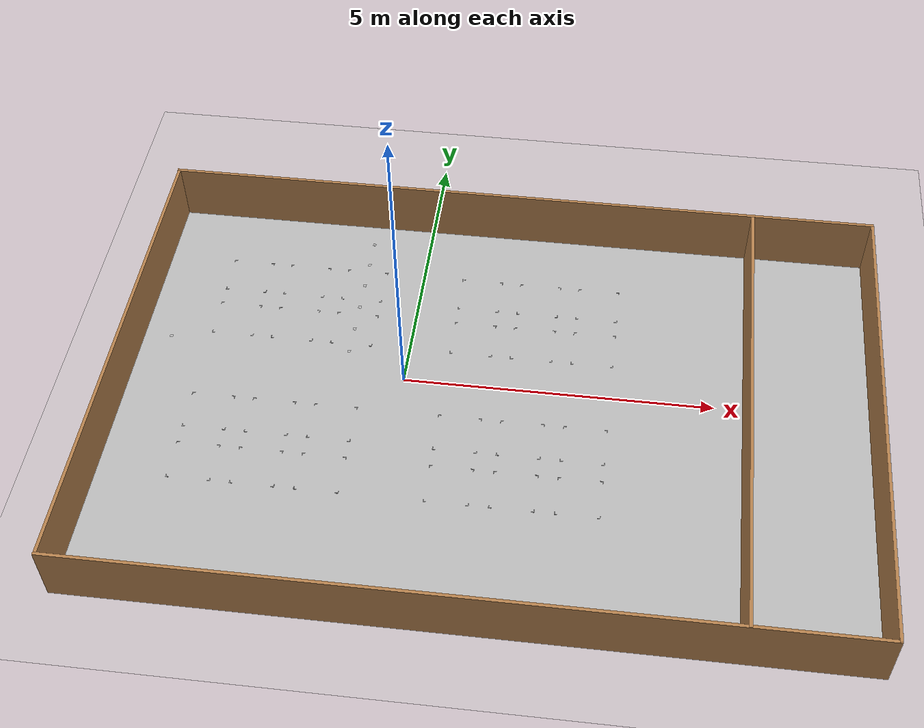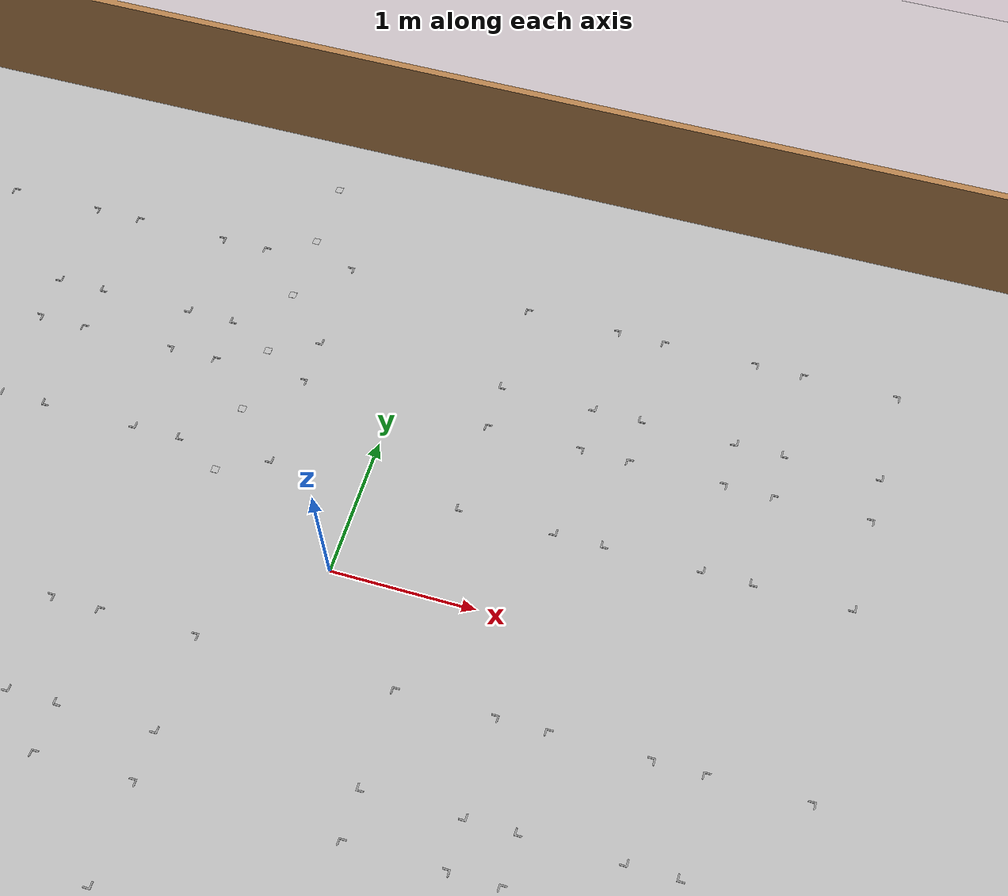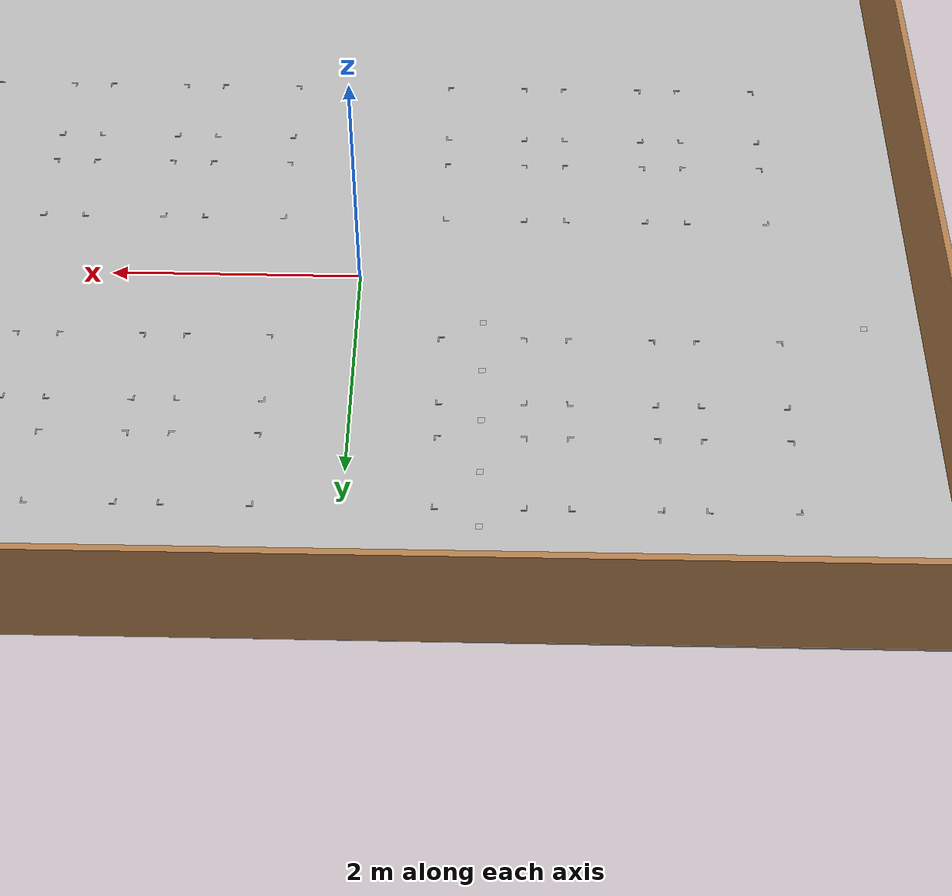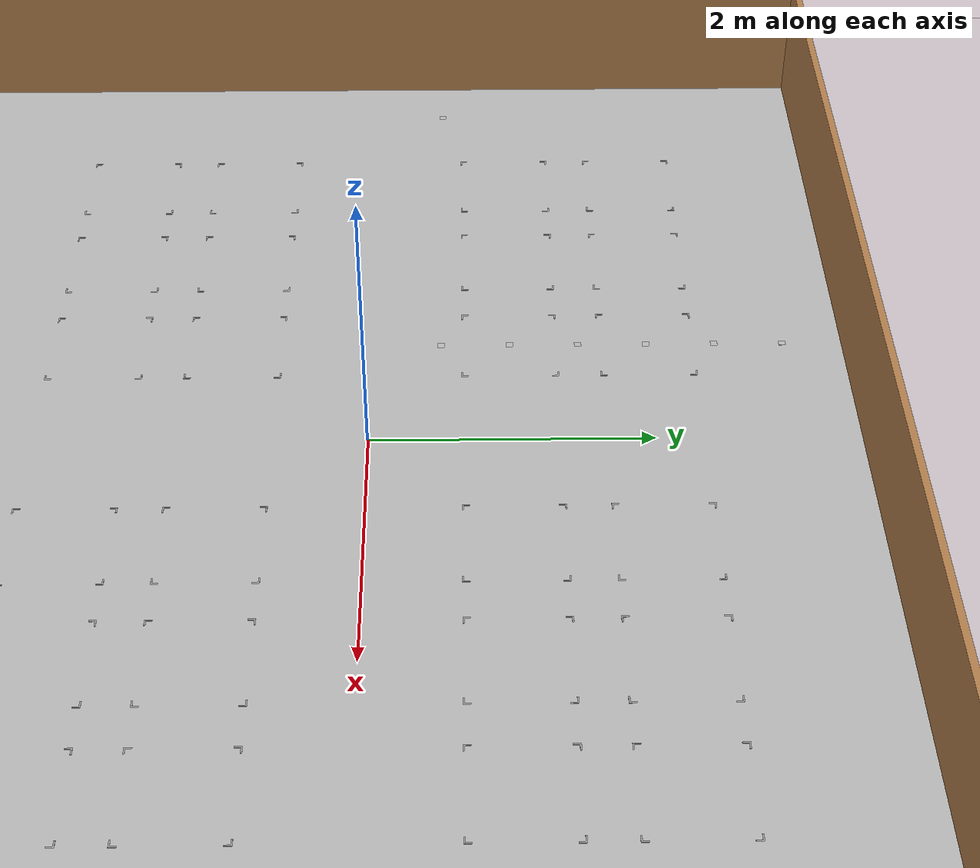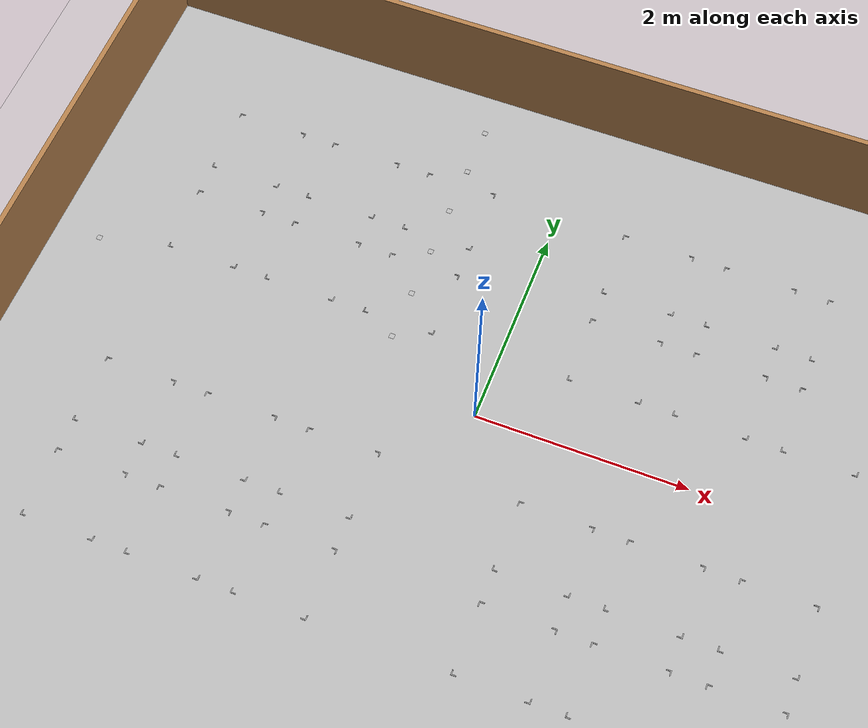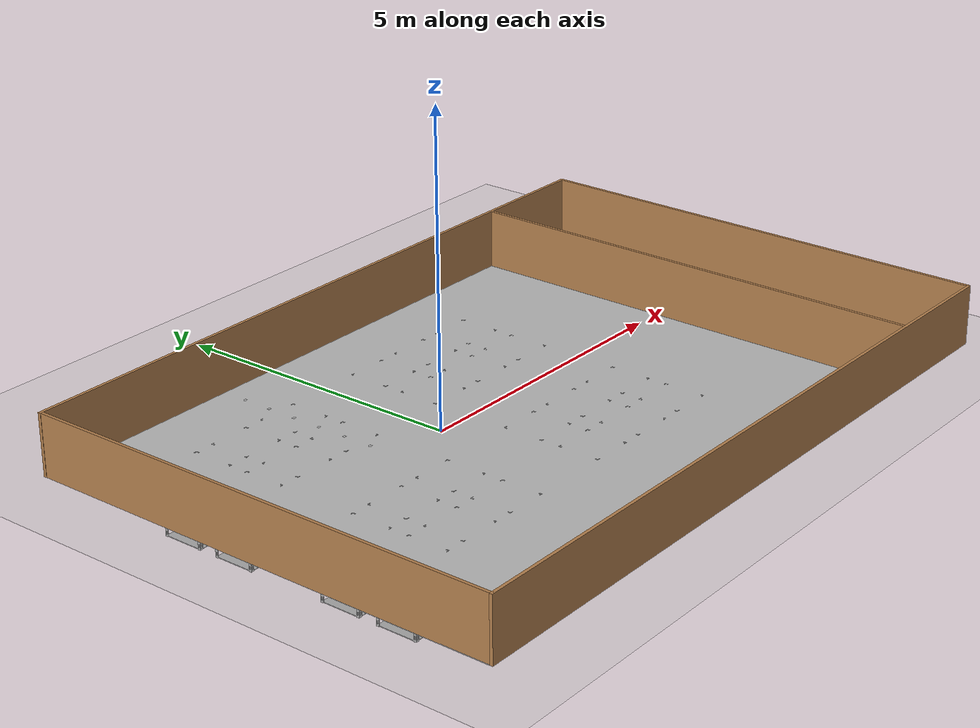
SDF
<sdf version="1.5">
 <world name="default">
  <physics name="default_physics" default="0" type="ode">
   <gravity>0 0 -9.8066</gravity>
   <ode>
    <solver>
     <type>quick</type>
     <iters>10</iters>
     <sor>1.3</sor>
     <use_dynamic_moi_rescaling>0</use_dynamic_moi_rescaling>
    </solver>
    <constraints>
     <cfm>0</cfm>
     <erp>0.2</erp>
     <contact_max_correcting_vel>1000</contact_max_correcting_vel>
     <contact_surface_layer>0.001</contact_surface_layer>
    </constraints>
   </ode>
   <max_step_size>0.004</max_step_size>
   <real_time_factor>1</real_time_factor>
   <real_time_update_rate>250</real_time_update_rate>
   <magnetic_field>6.0e-06 2.3e-05 -4.2e-05</magnetic_field>
  </physics>
  <scene><shadows>false</shadows></scene>
  <light name="sun" type="directional">
   <pose>0 0 1000 0.4 0.2 0</pose>
   <diffuse>1 1 1 1</diffuse>
   <specular>0.6 0.6 0.6 1</specular>
   <direction>0.1 0.1 -0.9</direction>
   <attenuation>
    <range>20</range>
    <constant>0.5</constant>
    <linear>0.01</linear>
    <quadratic>0.001</quadratic>
   </attenuation>
  </light>
  <include><uri>model://ground_plane</uri></include>
  <model name="wall"><include><uri>model://wall</uri><pose>-0.090000 0.020000 0 0 0 0</pose></include></model>
  <include><uri>model://warehouse</uri><pose>1.510117 -0.518801 0 0 0 3.14</pose></include>
  <model name="A1"><include><uri>model://shelf</uri><pose>-3 -2 0.009981 0.01 0 0 0</pose></include></model>
  <model name="A2"><include><uri>model://shelf</uri><pose>-2 -2 0.009981 0.01 0 0 0</pose></include></model>
  <model name="A3"><include><uri>model://shelf</uri><pose>-1 -2 0.009981 0.01 0 0 0</pose></include></model>
  <model name="A4"><include><uri>model://shelf</uri><pose>1 -2 0.009981 0.01 0 0 0</pose></include></model>
  <model name="A5"><include><uri>model://shelf</uri><pose>2 -2 0.009981 0.01 0 0 0</pose></include></model>
  <model name="A6"><include><uri>model://shelf</uri><pose>3 -2 0.009981 0.01 0 0 0</pose></include></model>
  <model name="B1"><include><uri>model://shelf</uri><pose>-3 -1 0.009981 0.01 0 0 0</pose></include></model>
  <model name="B2"><include><uri>model://shelf</uri><pose>-2 -1 0.009981 0.01 0 0 0</pose></include></model>
  <model name="B3"><include><uri>model://shelf</uri><pose>-1 -1 0.009981 0.01 0 0 0</pose></include></model>
  <model name="B4"><include><uri>model://shelf</uri><pose>1. -1 0.009981 0.01 0 0 0</pose></include></model>
  <model name="B5"><include><uri>model://shelf</uri><pose>2 -1 0.009981 0.01 0 0 0</pose></include></model>
  <model name="B6"><include><uri>model://shelf</uri><pose>3 -1 0.009981 0.01 0 0 0</pose></include></model>
  <model name="C1"><include><uri>model://shelf</uri><pose>-3 1 0.009981 0.01 0 0 0</pose></include></model>
  <model name="C2"><include><uri>model://shelf</uri><pose>-2 1 0.009981 0.01 0 0 0</pose></include></model>
  <model name="C3"><include><uri>model://shelf</uri><pose>-1 1 0.009981 0.01 0 0 0</pose></include></model>
  <model name="C4"><include><uri>model://shelf</uri><pose>1 1 0.009981 0.01 0 0 0</pose></include></model>
  <model name="C5"><include><uri>model://shelf</uri><pose>2 1 0.009981 0.01 0 0 0</pose></include></model>
  <model name="C6"><include><uri>model://shelf</uri><pose>3 1 0.009981 0.01 0 0 0</pose></include></model>
  <model name="D1"><include><uri>model://shelf</uri><pose>-3 2 0.009981 0.01 0 0 0</pose></include></model>
  <model name="D2"><include><uri>model://shelf</uri><pose>-2 2 0.009981 0.01 0 0 0</pose></include></model>
  <model name="D3"><include><uri>model://shelf</uri><pose>-1 2 0.009981 0.01 0 0 0</pose></include></model>
  <model name="D4"><include><uri>model://shelf</uri><pose>1 2 0.009981 0.01 0 0 0</pose></include></model>
  <model name="D5"><include><uri>model://shelf</uri><pose>2 2 0.009981 0.01 0 0 0</pose></include></model>
  <model name="D6"><include><uri>model://shelf</uri><pose>3 2 0.009981 0.01 0 0 0</pose></include></model>
  <model name="tag1"><include><uri>model://tags/tag1</uri><pose>-4.0 -4.0 0.011 0 0 0</pose></include></model>
  <model name="tag10"><include><uri>model://tags/tag10</uri><pose>-4.0 .5 0.011 0 0 0</pose></include></model>
  <model name="tag100"><include><uri>model://tags/tag100</uri><pose>-1.0 .5 0.011 0 0 0</pose></include></model>
  <model name="tag101">
   <include><uri>model://tags/tag101</uri><pose>-1.0 1.0 0.011 0 0 0</pose></include>
  </model>
  <model name="tag102">
   <include><uri>model://tags/tag102</uri><pose>-1.0 1.5 0.011 0 0 0</pose></include>
  </model>
  <model name="tag103">
   <include><uri>model://tags/tag103</uri><pose>-1.0 2.0 0.011 0 0 0</pose></include>
  </model>
  <model name="tag104">
   <include><uri>model://tags/tag104</uri><pose>-1.0 2.5 0.011 0 0 0</pose></include>
  </model>
  <model name="tag105">
   <include><uri>model://tags/tag105</uri><pose>-1.0 3.0 0.011 0 0 0</pose></include>
  </model>
 </world>
</sdf>

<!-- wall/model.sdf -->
<sdf version="1.5">
    <model name="walls">
        <static>true</static>
        <link name="wall_1">
            <pose>7.57 -0.57 0.5 0 0 0</pose>
            <static>true</static>
            <inertial>
                <mass>1.0</mass>
                <inertia>
                    <!-- inertias are tricky to compute -->
                    <ixx>1</ixx> <!-- for a box: ixx = 0.083 * mass * (y*y + z*z) -->
                    <ixy>0</ixy> <!-- for a box: ixy = 0 -->
                    <ixz>0</ixz> <!-- for a box: ixz = 0 -->
                    <iyy>1</iyy> <!-- for a box: iyy = 0.083 * mass * (x*x + z*z) -->
                    <iyz>0</iyz> <!-- for a box: iyz = 0 -->
                    <izz>1</izz> <!-- for a box: izz = 0.083 * mass * (x*x + y*y) -->
                </inertia>
            </inertial>
            <collision name="collision">
                <geometry>
                    <box>
                        <size>0.05 8 1</size>
                    </box>
                </geometry>
            </collision>
            <visual name="visual">
                <geometry>
                    <box>
                        <size>0.05 8 1</size>
                    </box>
                </geometry>
                <material>
                    <script>
                        <uri>file://usr/share/gazebo-11/media/materials/scripts/gazebo.material</uri>
                        <name>Gazebo/Wood</name>
                    </script>
                </material>
            </visual>
        </link>

        <link name="wall_2">
            <pose>-4.38 -0.57 0.5 0 0 0</pose>
            <static>true</static>
            <inertial>
                <mass>1.0</mass>
                <inertia>
                    <!-- inertias are tricky to compute -->
                    <ixx>1</ixx> <!-- for a box: ixx = 0.083 * mass * (y*y + z*z) -->
                    <ixy>0</ixy> <!-- for a box: ixy = 0 -->
                    <ixz>0</ixz> <!-- for a box: ixz = 0 -->
                    <iyy>1</iyy> <!-- for a box: iyy = 0.083 * mass * (x*x + z*z) -->
                    <iyz>0</iyz> <!-- for a box: iyz = 0 -->
                    <izz>1</izz> <!-- for a box: izz = 0.083 * mass * (x*x + y*y) -->
                </inertia>
            </inertial>
            <collision name="collision">
                <geometry>
                    <box>
                        <size>0.05 8 1</size>
                    </box>
                </geometry>
            </collision>
            <visual name="visual">
                <geometry>
                    <box>
                        <size>0.05 8 1</size>
                    </box>
                </geometry>
                <material>
                    <script>
                        <uri>file://usr/share/gazebo-11/media/materials/scripts/gazebo.material</uri>
                        <name>Gazebo/Wood</name>
                    </script>
                </material>
            </visual>
        </link>

        <link name="wall_3">
            <pose>1.59 -4.56 0.5 0 0 0</pose>
            <static>true</static>
            <inertial>
                <mass>1.0</mass>
                <inertia>
                    <!-- inertias are tricky to compute -->
                    <ixx>1</ixx> <!-- for a box: ixx = 0.083 * mass * (y*y + z*z) -->
                    <ixy>0</ixy> <!-- for a box: ixy = 0 -->
                    <ixz>0</ixz> <!-- for a box: ixz = 0 -->
                    <iyy>1</iyy> <!-- for a box: iyy = 0.083 * mass * (x*x + z*z) -->
                    <iyz>0</iyz> <!-- for a box: iyz = 0 -->
                    <izz>1</izz> <!-- for a box: izz = 0.083 * mass * (x*x + y*y) -->
                </inertia>
            </inertial>
            <collision name="collision">
                <geometry>
                    <box>
                        <size>12 0.05 1</size>
                    </box>
                </geometry>
            </collision>
            <visual name="visual">
                <geometry>
                    <box>
                        <size>12 0.05 1</size>
                    </box>
                </geometry>
                <material>
                    <script>
                        <uri>file://usr/share/gazebo-11/media/materials/scripts/gazebo.material</uri>
                        <name>Gazebo/Wood</name>
                    </script>
                </material>
            </visual>
        </link>

        <link name="wall_4">
            <pose>1.59 3.44 0.5 0 0 0</pose>
            <static>true</static>
            <inertial>
                <mass>1.0</mass>
                <inertia>
                    <!-- inertias are tricky to compute -->
                    <ixx>1</ixx> <!-- for a box: ixx = 0.083 * mass * (y*y + z*z) -->
                    <ixy>0</ixy> <!-- for a box: ixy = 0 -->
                    <ixz>0</ixz> <!-- for a box: ixz = 0 -->
                    <iyy>1</iyy> <!-- for a box: iyy = 0.083 * mass * (x*x + z*z) -->
                    <iyz>0</iyz> <!-- for a box: iyz = 0 -->
                    <izz>1</izz> <!-- for a box: izz = 0.083 * mass * (x*x + y*y) -->
                </inertia>
            </inertial>
            <collision name="collision">
                <geometry>
                    <box>
                        <size>12 0.05 1</size>
                    </box>
                </geometry>
            </collision>
            <visual name="visual">
                <geometry>
                    <box>
                        <size>12 0.05 1</size>
                    </box>
                </geometry>
                <material>
                    <script>
                        <uri>file://usr/share/gazebo-11/media/materials/scripts/gazebo.material</uri>
                        <name>Gazebo/Wood</name>
                    </script>
                </material>
            </visual>
        </link>

        <link name="wall_5">
            <pose>5.57 -0.57 0.5 0 0 0</pose>
            <static>true</static>
            <inertial>
                <mass>1.0</mass>
                <inertia>
                    <!-- inertias are tricky to compute -->
                    <ixx>1</ixx> <!-- for a box: ixx = 0.083 * mass * (y*y + z*z) -->
                    <ixy>0</ixy> <!-- for a box: ixy = 0 -->
                    <ixz>0</ixz> <!-- for a box: ixz = 0 -->
                    <iyy>1</iyy> <!-- for a box: iyy = 0.083 * mass * (x*x + z*z) -->
                    <iyz>0</iyz> <!-- for a box: iyz = 0 -->
                    <izz>1</izz> <!-- for a box: izz = 0.083 * mass * (x*x + y*y) -->
                </inertia>
            </inertial>
            <collision name="collision">
                <geometry>
                    <box>
                        <size>0.05 8 1</size>
                    </box>
                </geometry>
            </collision>
            <visual name="visual">
                <geometry>
                    <box>
                        <size>0.05 8 1</size>
                    </box>
                </geometry>
                <material>
                    <script>
                        <uri>file://usr/share/gazebo-11/media/materials/scripts/gazebo.material</uri>
                        <name>Gazebo/Wood</name>
                    </script>
                </material>
            </visual>
        </link>

    </model>
</sdf>

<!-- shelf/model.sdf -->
<sdf version='1.6'>
  <model name='shelf'>
    <link name='link'>
      <inertial>
        <mass>0.1</mass>
        <inertia>
          <ixx>1</ixx>
          <ixy>0.00</ixy>
          <ixz>0.00</ixz>
          <iyy>1</iyy>
          <iyz>0.00</iyz>
          <izz>1</izz>
        </inertia>
      </inertial>
      <pose frame=''>0 0 0 0 -0 0</pose>
      <visual name='visual'>
        <pose frame=''>0 0 0 0 -0 0</pose>
        <geometry>
          <mesh>
            <uri>model://shelf/meshes/shelf.dae</uri>
            <scale>1 1 1</scale>
          </mesh>
        </geometry>
        <transparency>0</transparency>
        <cast_shadows>1</cast_shadows>
      </visual>
      <collision name='collision'>
        <laser_retro>0</laser_retro>
        <max_contacts>10</max_contacts>
        <pose frame=''>0 0 0 0 -0 0</pose>
        <geometry>
          <mesh>
            <uri>model://shelf/meshes/shelf.dae</uri>
            <scale>1 1 1</scale>
          </mesh>
        </geometry>
        <surface>
          <friction>
            <ode>
              <mu>1</mu>
              <mu2>1</mu2>
              <fdir1>0 0 0</fdir1>
              <slip1>0</slip1>
              <slip2>0</slip2>
            </ode>
            <torsional>
              <coefficient>1</coefficient>
              <patch_radius>1</patch_radius>
              <surface_radius>1</surface_radius>
              <use_patch_radius>1</use_patch_radius>
              <ode>
                <slip>0</slip>
              </ode>
            </torsional>
          </friction>
          <bounce>
            <restitution_coefficient>1</restitution_coefficient>
            <threshold>1e+06</threshold>
          </bounce>
          <contact>
            <collide_without_contact>0</collide_without_contact>
            <collide_without_contact_bitmask>1</collide_without_contact_bitmask>
            <collide_bitmask>1</collide_bitmask>
            <ode>
              <soft_cfm>0</soft_cfm>
              <soft_erp>0.2</soft_erp>
              <kp>1e+13</kp>
              <kd>1</kd>
              <max_vel>0.01</max_vel>
              <min_depth>0</min_depth>
            </ode>
            <bullet>
              <split_impulse>1</split_impulse>
              <split_impulse_penetration_threshold>-0.01</split_impulse_penetration_threshold>
              <soft_cfm>0</soft_cfm>
              <soft_erp>0.2</soft_erp>
              <kp>1e+13</kp>
              <kd>1</kd>
            </bullet>
          </contact>
        </surface>
      </collision>
    </link>
    <static>0</static>
    <allow_auto_disable>1</allow_auto_disable>
  </model>
</sdf>

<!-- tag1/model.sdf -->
<sdf version="1.5">
  <model name="tag1">
    <static>true</static>

    <link name="link">
      <collision name="collision">
        <geometry>
          <mesh>
            <uri>model://tags/tag1/meshes/tag1.dae</uri>
          </mesh>
        </geometry>
      </collision>
      <visual name="visual">
        <geometry>
          <mesh>
            <uri>model://tags/tag1/meshes/tag1.dae</uri>
            </mesh>
        </geometry>
      </visual>
    </link>
  </model>
</sdf>

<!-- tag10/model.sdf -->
<sdf version="1.5">
  <model name="tag10">
    <static>true</static>

    <link name="link">
      <collision name="collision">
        <geometry>
          <mesh>
            <uri>model://tags/tag10/meshes/tag10.dae</uri>
          </mesh>
        </geometry>
      </collision>
      <visual name="visual">
        <geometry>
          <mesh>
            <uri>model://tags/tag10/meshes/tag10.dae</uri>
            </mesh>
        </geometry>
      </visual>
    </link>
  </model>
</sdf>

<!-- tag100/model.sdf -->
<sdf version="1.5">
  <model name="tag100">
    <static>true</static>

    <link name="link">
      <collision name="collision">
        <geometry>
          <mesh>
            <uri>model://tags/tag100/meshes/tag100.dae</uri>
          </mesh>
        </geometry>
      </collision>
      <visual name="visual">
        <geometry>
          <mesh>
            <uri>model://tags/tag100/meshes/tag100.dae</uri>
            </mesh>
        </geometry>
      </visual>
    </link>
  </model>
</sdf>

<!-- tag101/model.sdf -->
<sdf version="1.5">
  <model name="tag101">
    <static>true</static>

    <link name="link">
      <collision name="collision">
        <geometry>
          <mesh>
            <uri>model://tags/tag101/meshes/tag101.dae</uri>
          </mesh>
        </geometry>
      </collision>
      <visual name="visual">
        <geometry>
          <mesh>
            <uri>model://tags/tag101/meshes/tag101.dae</uri>
            </mesh>
        </geometry>
      </visual>
    </link>
  </model>
</sdf>

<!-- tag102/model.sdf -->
<sdf version="1.5">
  <model name="tag102">
    <static>true</static>

    <link name="link">
      <collision name="collision">
        <geometry>
          <mesh>
            <uri>model://tags/tag102/meshes/tag102.dae</uri>
          </mesh>
        </geometry>
      </collision>
      <visual name="visual">
        <geometry>
          <mesh>
            <uri>model://tags/tag102/meshes/tag102.dae</uri>
            </mesh>
        </geometry>
      </visual>
    </link>
  </model>
</sdf>

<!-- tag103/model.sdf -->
<sdf version="1.5">
  <model name="tag103">
    <static>true</static>

    <link name="link">
      <collision name="collision">
        <geometry>
          <mesh>
            <uri>model://tags/tag103/meshes/tag103.dae</uri>
          </mesh>
        </geometry>
      </collision>
      <visual name="visual">
        <geometry>
          <mesh>
            <uri>model://tags/tag103/meshes/tag103.dae</uri>
            </mesh>
        </geometry>
      </visual>
    </link>
  </model>
</sdf>

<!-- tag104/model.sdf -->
<sdf version="1.5">
  <model name="tag104">
    <static>true</static>

    <link name="link">
      <collision name="collision">
        <geometry>
          <mesh>
            <uri>model://tags/tag104/meshes/tag104.dae</uri>
          </mesh>
        </geometry>
      </collision>
      <visual name="visual">
        <geometry>
          <mesh>
            <uri>model://tags/tag104/meshes/tag104.dae</uri>
            </mesh>
        </geometry>
      </visual>
    </link>
  </model>
</sdf>

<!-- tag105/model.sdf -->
<sdf version="1.5">
  <model name="tag105">
    <static>true</static>

    <link name="link">
      <collision name="collision">
        <geometry>
          <mesh>
            <uri>model://tags/tag105/meshes/tag105.dae</uri>
          </mesh>
        </geometry>
      </collision>
      <visual name="visual">
        <geometry>
          <mesh>
            <uri>model://tags/tag105/meshes/tag105.dae</uri>
            </mesh>
        </geometry>
      </visual>
    </link>
  </model>
</sdf>

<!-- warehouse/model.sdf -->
<sdf version="1.5">
  <model name="warehouse">
    <static>true</static>

    <link name="link">
      <collision name="collision">
        <geometry>
          <mesh>
            <uri>model://warehouse/meshes/warehouse.dae</uri>
            <scale>1 1 1</scale>
          </mesh>
        </geometry>
      </collision>
      <visual name="visual">
        <geometry>
          <mesh>
            <uri>model://warehouse/meshes/warehouse.dae</uri>
            <scale>1 1 1</scale>
          </mesh>
        </geometry>
      </visual>
    </link>
  </model>
</sdf>
